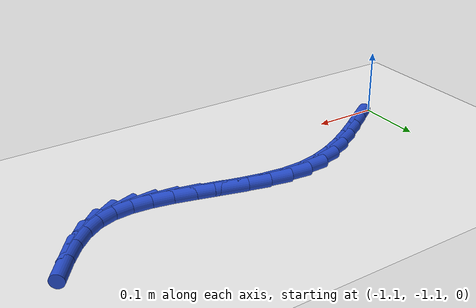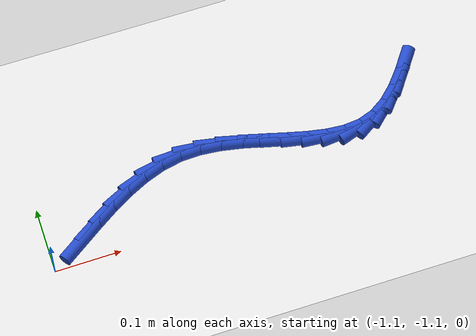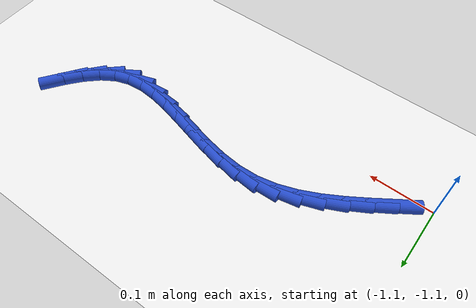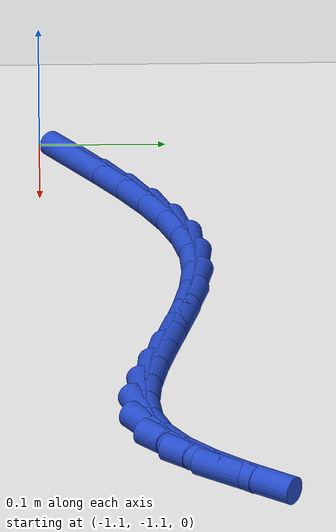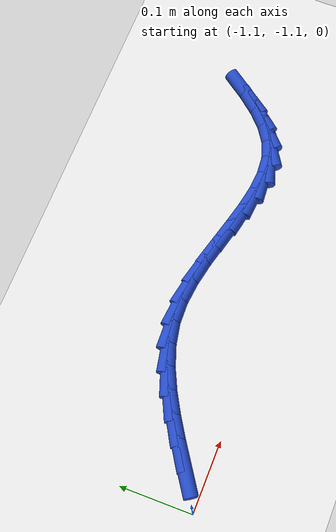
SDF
<sdf version="1.6">
 <world name="default">
  <model name="ground_plane">
   <static>1</static>
   <link name="link">
    <collision name="collision">
     <geometry><plane><normal>0 0 1</normal><size>100 100</size></plane></geometry>
     <surface><friction><ode><mu>100</mu><mu2>50</mu2></ode></friction></surface>
    </collision>
    <visual name="visual">
     <cast_shadows>0</cast_shadows>
     <geometry><plane><normal>0 0 1</normal><size>100 100</size></plane></geometry>
     <material>
      <script><uri>file://media/materials/scripts/gazebo.material</uri><name>Gazebo/WhiteGlow</name></script>
     </material>
    </visual>
   </link>
  </model>
  <model name="line">
   <link name="link_174">
    <pose>-1.0496762254451137 -1.06900414389348 0.01 0 1.57 0.5940687964292162</pose>
    <collision name="collision">
     <geometry><cylinder><radius>0.01</radius><length>0.08</length></cylinder></geometry>
    </collision>
    <visual name="visual">
     <material>
      <script><name>Gazebo/Blue</name><uri>file://media/materials/scripts/gazebo.material</uri></script>
     </material>
     <geometry><cylinder><radius>0.01</radius><length>0.08</length></cylinder></geometry>
    </visual>
   </link>
   <link name="link_175">
    <pose>-1.022121030579232 -1.0503915842978864 0.01 0 1.57 0.5703835203570962</pose>
    <collision name="collision">
     <geometry><cylinder><radius>0.01</radius><length>0.08</length></cylinder></geometry>
    </collision>
    <visual name="visual">
     <material>
      <script><name>Gazebo/Blue</name><uri>file://media/materials/scripts/gazebo.material</uri></script>
     </material>
     <geometry><cylinder><radius>0.01</radius><length>0.08</length></cylinder></geometry>
    </visual>
   </link>
   <link name="link_176">
    <pose>-0.9939737695921642 -1.0323348413504505 0.01 0 1.57 0.521814726433964</pose>
    <collision name="collision">
     <geometry><cylinder><radius>0.01</radius><length>0.08</length></cylinder></geometry>
    </collision>
    <visual name="visual">
     <material>
      <script><name>Gazebo/Blue</name><uri>file://media/materials/scripts/gazebo.material</uri></script>
     </material>
     <geometry><cylinder><radius>0.01</radius><length>0.08</length></cylinder></geometry>
    </visual>
   </link>
   <link name="link_177">
    <pose>-0.965214236512406 -1.0157988580929451 0.01 0 1.57 0.445918122704139</pose>
    <collision name="collision">
     <geometry><cylinder><radius>0.01</radius><length>0.08</length></cylinder></geometry>
    </collision>
    <visual name="visual">
     <material>
      <script><name>Gazebo/Blue</name><uri>file://media/materials/scripts/gazebo.material</uri></script>
     </material>
     <geometry><cylinder><radius>0.01</radius><length>0.08</length></cylinder></geometry>
    </visual>
   </link>
   <link name="link_178">
    <pose>-0.9358222253684536 -1.0017485775671444 0.01 0 1.57 0.33916311275584826</pose>
    <collision name="collision">
     <geometry><cylinder><radius>0.01</radius><length>0.08</length></cylinder></geometry>
    </collision>
    <visual name="visual">
     <material>
      <script><name>Gazebo/Blue</name><uri>file://media/materials/scripts/gazebo.material</uri></script>
     </material>
     <geometry><cylinder><radius>0.01</radius><length>0.08</length></cylinder></geometry>
    </visual>
   </link>
   <link name="link_179">
    <pose>-0.905777530188803 -0.9911489428148224 0.01 0 1.57 0.19866389488674094</pose>
    <collision name="collision">
     <geometry><cylinder><radius>0.01</radius><length>0.08</length></cylinder></geometry>
    </collision>
    <visual name="visual">
     <material>
      <script><name>Gazebo/Blue</name><uri>file://media/materials/scripts/gazebo.material</uri></script>
     </material>
     <geometry><cylinder><radius>0.01</radius><length>0.08</length></cylinder></geometry>
    </visual>
   </link>
   <link name="link_180">
    <pose>-0.8750599450019525 -0.9849648968777531 0.01 0 1.57 0.035281712954477476</pose>
    <collision name="collision">
     <geometry><cylinder><radius>0.01</radius><length>0.08</length></cylinder></geometry>
    </collision>
    <visual name="visual">
     <material>
      <script><name>Gazebo/Blue</name><uri>file://media/materials/scripts/gazebo.material</uri></script>
     </material>
     <geometry><cylinder><radius>0.01</radius><length>0.08</length></cylinder></geometry>
    </visual>
   </link>
   <link name="link_181">
    <pose>-0.84369308620605 -0.9838577609439713 0.01 0 1.57 -0.0989889615326606</pose>
    <collision name="collision">
     <geometry><cylinder><radius>0.01</radius><length>0.08</length></cylinder></geometry>
    </collision>
    <visual name="visual">
     <material>
      <script><name>Gazebo/Blue</name><uri>file://media/materials/scripts/gazebo.material</uri></script>
     </material>
     <geometry><cylinder><radius>0.01</radius><length>0.08</length></cylinder></geometry>
    </visual>
   </link>
   <link name="link_182">
    <pose>-0.8119134523078572 -0.9870139094800437 0.01 0 1.57 -0.1907627020407908</pose>
    <collision name="collision">
     <geometry><cylinder><radius>0.01</radius><length>0.08</length></cylinder></geometry>
    </collision>
    <visual name="visual">
     <material>
      <script><name>Gazebo/Blue</name><uri>file://media/materials/scripts/gazebo.material</uri></script>
     </material>
     <geometry><cylinder><radius>0.01</radius><length>0.08</length></cylinder></geometry>
    </visual>
   </link>
   <link name="link_183">
    <pose>-0.7800220928051054 -0.9931724775244924 0.01 0 1.57 -0.24422198237026008</pose>
    <collision name="collision">
     <geometry><cylinder><radius>0.01</radius><length>0.08</length></cylinder></geometry>
    </collision>
    <visual name="visual">
     <material>
      <script><name>Gazebo/Blue</name><uri>file://media/materials/scripts/gazebo.material</uri></script>
     </material>
     <geometry><cylinder><radius>0.01</radius><length>0.08</length></cylinder></geometry>
    </visual>
   </link>
   <link name="link_184">
    <pose>-0.7483200716377508 -1.0010725000533487 0.01 0 1.57 -0.2623189748110819</pose>
    <collision name="collision">
     <geometry><cylinder><radius>0.01</radius><length>0.08</length></cylinder></geometry>
    </collision>
    <visual name="visual">
     <material>
      <script><name>Gazebo/Blue</name><uri>file://media/materials/scripts/gazebo.material</uri></script>
     </material>
     <geometry><cylinder><radius>0.01</radius><length>0.08</length></cylinder></geometry>
    </visual>
   </link>
   <link name="link_185">
    <pose>-0.7171084527457526 -1.009453012042642 0.01 0 1.57 -0.24482390699030598</pose>
    <collision name="collision">
     <geometry><cylinder><radius>0.01</radius><length>0.08</length></cylinder></geometry>
    </collision>
    <visual name="visual">
     <material>
      <script><name>Gazebo/Blue</name><uri>file://media/materials/scripts/gazebo.material</uri></script>
     </material>
     <geometry><cylinder><radius>0.01</radius><length>0.08</length></cylinder></geometry>
    </visual>
   </link>
   <link name="link_186">
    <pose>-0.6866883000690673 -1.0170530484684028 0.01 0 1.57 -0.1873126129943375</pose>
    <collision name="collision">
     <geometry><cylinder><radius>0.01</radius><length>0.08</length></cylinder></geometry>
    </collision>
    <visual name="visual">
     <material>
      <script><name>Gazebo/Blue</name><uri>file://media/materials/scripts/gazebo.material</uri></script>
     </material>
     <geometry><cylinder><radius>0.01</radius><length>0.08</length></cylinder></geometry>
    </visual>
   </link>
   <link name="link_187">
    <pose>-0.6573606775476524 -1.0226116443066622 0.01 0 1.57 -0.08059357497989775</pose>
    <collision name="collision">
     <geometry><cylinder><radius>0.01</radius><length>0.08</length></cylinder></geometry>
    </collision>
    <visual name="visual">
     <material>
      <script><name>Gazebo/Blue</name><uri>file://media/materials/scripts/gazebo.material</uri></script>
     </material>
     <geometry><cylinder><radius>0.01</radius><length>0.08</length></cylinder></geometry>
    </visual>
   </link>
   <link name="link_188">
    <pose>-0.6294266491214641 -1.0248678345334499 0.01 0 1.57 0.0877026361027514</pose>
    <collision name="collision">
     <geometry><cylinder><radius>0.01</radius><length>0.08</length></cylinder></geometry>
    </collision>
    <visual name="visual">
     <material>
      <script><name>Gazebo/Blue</name><uri>file://media/materials/scripts/gazebo.material</uri></script>
     </material>
     <geometry><cylinder><radius>0.01</radius><length>0.08</length></cylinder></geometry>
    </visual>
   </link>
   <link name="link_189">
    <pose>-0.6031872787304612 -1.0225606541247962 0.01 0 1.57 0.3230352141922772</pose>
    <collision name="collision">
     <geometry><cylinder><radius>0.01</radius><length>0.08</length></cylinder></geometry>
    </collision>
    <visual name="visual">
     <material>
      <script><name>Gazebo/Blue</name><uri>file://media/materials/scripts/gazebo.material</uri></script>
     </material>
     <geometry><cylinder><radius>0.01</radius><length>0.08</length></cylinder></geometry>
    </visual>
   </link>
   <link name="link_190">
    <pose>-0.5789393664741325 -1.0144433903948462 0.01 0 1.57 0.5707824435391863</pose>
    <collision name="collision">
     <geometry><cylinder><radius>0.01</radius><length>0.08</length></cylinder></geometry>
    </collision>
    <visual name="visual">
     <material>
      <script><name>Gazebo/Blue</name><uri>file://media/materials/scripts/gazebo.material</uri></script>
     </material>
     <geometry><cylinder><radius>0.01</radius><length>0.08</length></cylinder></geometry>
    </visual>
   </link>
   <link name="link_191">
    <pose>-0.5567100900712015 -1.000170572006388 0.01 0 1.57 0.7538824872599199</pose>
    <collision name="collision">
     <geometry><cylinder><radius>0.01</radius><length>0.08</length></cylinder></geometry>
    </collision>
    <visual name="visual">
     <material>
      <script><name>Gazebo/Blue</name><uri>file://media/materials/scripts/gazebo.material</uri></script>
     </material>
     <geometry><cylinder><radius>0.01</radius><length>0.08</length></cylinder></geometry>
    </visual>
   </link>
   <link name="link_192">
    <pose>-0.5361005831494445 -0.9808208250951861 0.01 0 1.57 0.8741730120785483</pose>
    <collision name="collision">
     <geometry><cylinder><radius>0.01</radius><length>0.08</length></cylinder></geometry>
    </collision>
    <visual name="visual">
     <material>
      <script><name>Gazebo/Blue</name><uri>file://media/materials/scripts/gazebo.material</uri></script>
     </material>
     <geometry><cylinder><radius>0.01</radius><length>0.08</length></cylinder></geometry>
    </visual>
   </link>
   <link name="link_193">
    <pose>-0.5166743634935099 -0.9575985107345028 0.01 0 1.57 0.9458012363197044</pose>
    <collision name="collision">
     <geometry><cylinder><radius>0.01</radius><length>0.08</length></cylinder></geometry>
    </collision>
    <visual name="visual">
     <material>
      <script><name>Gazebo/Blue</name><uri>file://media/materials/scripts/gazebo.material</uri></script>
     </material>
     <geometry><cylinder><radius>0.01</radius><length>0.08</length></cylinder></geometry>
    </visual>
   </link>
  </model>
 </world>
</sdf>
